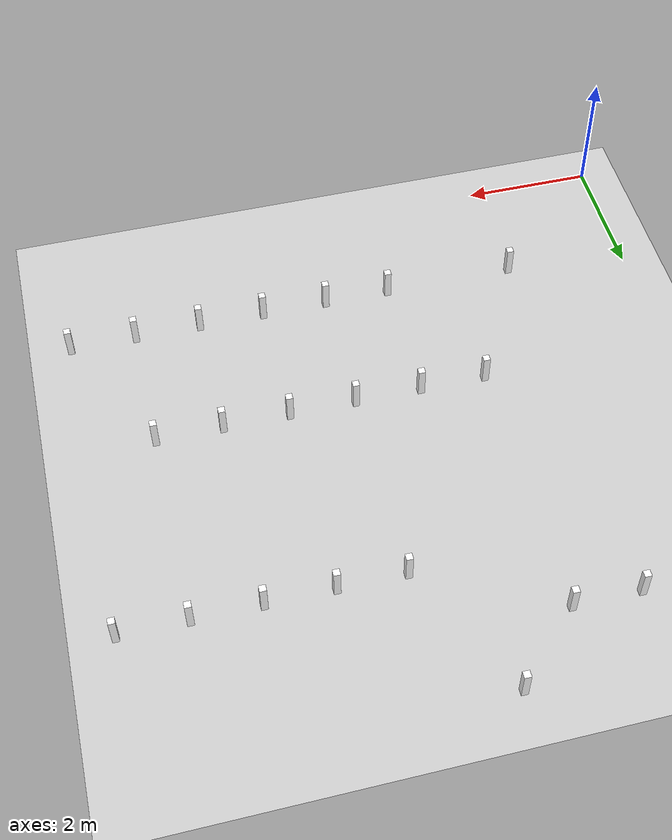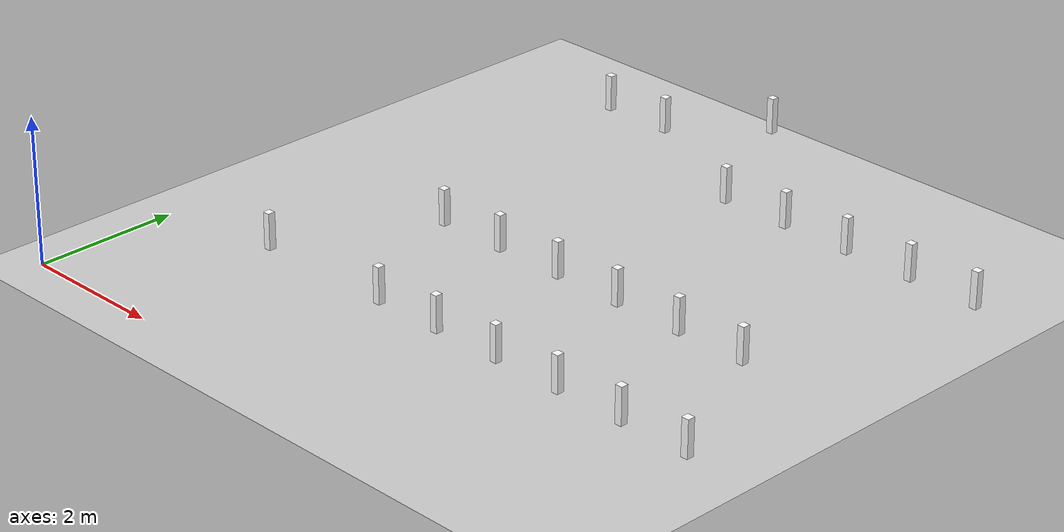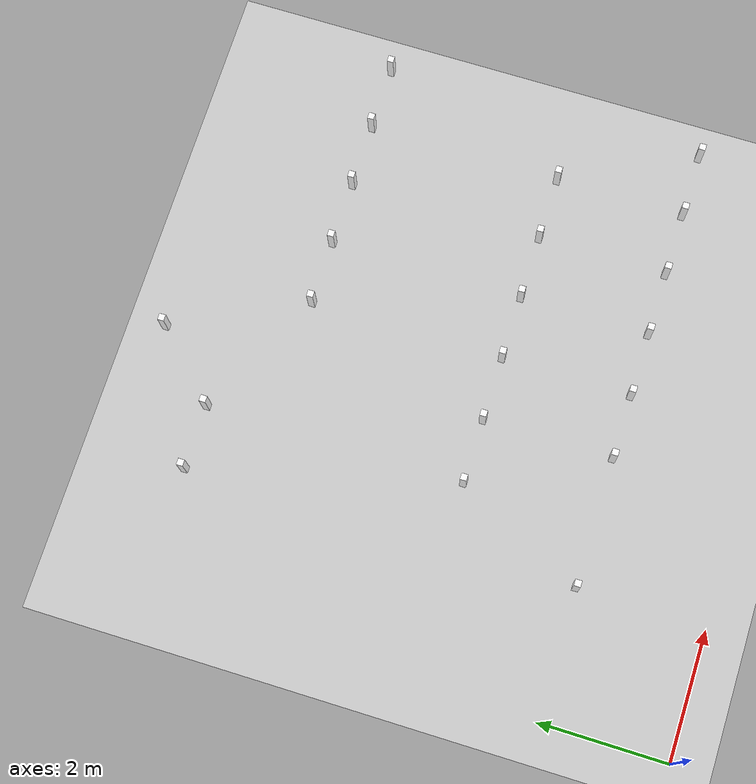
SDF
<sdf version="1.6">
  <world name="default">

    <!-- Ground plane -->
    <include>
      <uri>model://ground_plane</uri>
    </include>

    <!-- Sun -->
    <include>
      <uri>model://sun</uri>
    </include>

    <!-- Thin Wall 1 at (0, 0) -->
    <model name="wall_1">
      <pose>2 2 0.5 0 0 0</pose>
      <link name="link">
        <collision name="collision">
          <geometry>
            <box>
              <!-- Thin wall dimensions -->
              <size>0.1 0.1 0.5</size>
            </box>
          </geometry>
        </collision>
        <visual name="visual">
          <geometry>
            <box>
              <size>0.1 0.1 0.5</size>
            </box>
          </geometry>
          <material>
            <ambient>1 1 1 1</ambient>
            <diffuse>1 1 1 1</diffuse>
          </material>
        </visual>
      </link>
    </model>

    <!-- Add more thin walls as needed -->
     <!-- Thin Wall 4 at (0, 1) -->
    <model name="wall_4">
      <pose>3 4 0.5 0 0 0</pose>
      <link name="link">
        <collision name="collision">
          <geometry>
            <box>
              <!-- Thin wall dimensions -->
              <size>0.1 0.1 0.5</size>
            </box>
          </geometry>
        </collision>
        <visual name="visual">
          <geometry>
            <box>
              <size>0.1 0.1 0.5</size>
            </box>
          </geometry>
          <material>
            <ambient>1 1 1 1</ambient>
            <diffuse>1 1 1 1</diffuse>
          </material>
        </visual>
      </link>
    </model>

  <!-- Add more thin walls as needed -->
     <!-- Thin Wall 5 at (0, 1) -->
    <model name="wall_5">
      <pose>4 4 0.5 0 0 0</pose>
      <link name="link">
        <collision name="collision">
          <geometry>
            <box>
              <!-- Thin wall dimensions -->
              <size>0.1 0.1 0.5</size>
            </box>
          </geometry>
        </collision>
        <visual name="visual">
          <geometry>
            <box>
              <size>0.1 0.1 0.5</size>
            </box>
          </geometry>
          <material>
            <ambient>1 1 1 1</ambient>
            <diffuse>1 1 1 1</diffuse>
          </material>
        </visual>
      </link>
    </model>

    <!-- Add more thin walls as needed -->

    <model name="wall_6">
      <pose>5 4 0.5 0 0 0</pose>
      <link name="link">
        <collision name="collision">
          <geometry>
            <box>
              <!-- Thin wall dimensions -->
              <size>0.1 0.1 0.5</size>
            </box>
          </geometry>
        </collision>
        <visual name="visual">
          <geometry>
            <box>
              <size>0.1 0.1 0.5</size>
            </box>
          </geometry>
          <material>
            <ambient>1 1 1 1</ambient>
            <diffuse>1 1 1 1</diffuse>
          </material>
        </visual>
      </link>
    </model>

    <model name="wall_7">
      <pose>6 4 0.5 0 0 0</pose>
      <link name="link">
        <collision name="collision">
          <geometry>
            <box>
              <!-- Thin wall dimensions -->
              <size>0.1 0.1 0.5</size>
            </box>
          </geometry>
        </collision>
        <visual name="visual">
          <geometry>
            <box>
              <size>0.1 0.1 0.5</size>
            </box>
          </geometry>
          <material>
            <ambient>1 1 1 1</ambient>
            <diffuse>1 1 1 1</diffuse>
          </material>
        </visual>
      </link>
    </model>
    <model name="wall_8">
      <pose>7 4 0.5 0 0 0</pose>
      <link name="link">
        <collision name="collision">
          <geometry>
            <box>
              <!-- Thin wall dimensions -->
              <size>0.1 0.1 0.5</size>
            </box>
          </geometry>
        </collision>
        <visual name="visual">
          <geometry>
            <box>
              <size>0.1 0.1 0.5</size>
            </box>
          </geometry>
          <material>
            <ambient>1 1 1 1</ambient>
            <diffuse>1 1 1 1</diffuse>
          </material>
        </visual>
      </link>
    </model>

    <model name="wall_8">
      <pose>7 4 0.5 0 0 0</pose>
      <link name="link">
        <collision name="collision">
          <geometry>
            <box>
              <!-- Thin wall dimensions -->
              <size>0.1 0.1 0.5</size>
            </box>
          </geometry>
        </collision>
        <visual name="visual">
          <geometry>
            <box>
              <size>0.1 0.1 0.5</size>
            </box>
          </geometry>
          <material>
            <ambient>1 1 1 1</ambient>
            <diffuse>1 1 1 1</diffuse>
          </material>
        </visual>
      </link>
    </model>

    <model name="wall_9">
      <pose>8 4 0.5 0 0 0</pose>
      <link name="link">
        <collision name="collision">
          <geometry>
            <box>
              <!-- Thin wall dimensions -->
              <size>0.1 0.1 0.5</size>
            </box>
          </geometry>
        </collision>
        <visual name="visual">
          <geometry>
            <box>
              <size>0.1 0.1 0.5</size>
            </box>
          </geometry>
          <material>
            <ambient>1 1 1 1</ambient>
            <diffuse>1 1 1 1</diffuse>
          </material>
        </visual>
      </link>
    </model>

    <model name="wall_4_0">
      <pose>4 2 0.5 0 0 0</pose>
      <link name="link">
        <collision name="collision">
          <geometry>
            <box>
              <!-- Thin wall dimensions -->
              <size>0.1 0.1 0.5</size>
            </box>
          </geometry>
        </collision>
        <visual name="visual">
          <geometry>
            <box>
              <size>0.1 0.1 0.5</size>
            </box>
          </geometry>
          <material>
            <ambient>1 1 1 1</ambient>
            <diffuse>1 1 1 1</diffuse>
          </material>
        </visual>
      </link>
    </model>

    <model name="wall_4_1">
      <pose>5 2 0.5 0 0 0</pose>
      <link name="link">
        <collision name="collision">
          <geometry>
            <box>
              <!-- Thin wall dimensions -->
              <size>0.1 0.1 0.5</size>
            </box>
          </geometry>
        </collision>
        <visual name="visual">
          <geometry>
            <box>
              <size>0.1 0.1 0.5</size>
            </box>
          </geometry>
          <material>
            <ambient>1 1 1 1</ambient>
            <diffuse>1 1 1 1</diffuse>
          </material>
        </visual>
      </link>
    </model>

    <model name="wall_4_2">
      <pose>6 2 0.5 0 0 0</pose>
      <link name="link">
        <collision name="collision">
          <geometry>
            <box>
              <!-- Thin wall dimensions -->
              <size>0.1 0.1 0.5</size>
            </box>
          </geometry>
        </collision>
        <visual name="visual">
          <geometry>
            <box>
              <size>0.1 0.1 0.5</size>
            </box>
          </geometry>
          <material>
            <ambient>1 1 1 1</ambient>
            <diffuse>1 1 1 1</diffuse>
          </material>
        </visual>
      </link>
    </model>

    <model name="wall_4_3">
      <pose>7 2 0.5 0 0 0</pose>
      <link name="link">
        <collision name="collision">
          <geometry>
            <box>
              <!-- Thin wall dimensions -->
              <size>0.1 0.1 0.5</size>
            </box>
          </geometry>
        </collision>
        <visual name="visual">
          <geometry>
            <box>
              <size>0.1 0.1 0.5</size>
            </box>
          </geometry>
          <material>
            <ambient>1 1 1 1</ambient>
            <diffuse>1 1 1 1</diffuse>
          </material>
        </visual>
      </link>
    </model>

    <model name="wall_4_4">
      <pose>8 2 0.5 0 0 0</pose>
      <link name="link">
        <collision name="collision">
          <geometry>
            <box>
              <!-- Thin wall dimensions -->
              <size>0.1 0.1 0.5</size>
            </box>
          </geometry>
        </collision>
        <visual name="visual">
          <geometry>
            <box>
              <size>0.1 0.1 0.5</size>
            </box>
          </geometry>
          <material>
            <ambient>1 1 1 1</ambient>
            <diffuse>1 1 1 1</diffuse>
          </material>
        </visual>
      </link>
    </model>

    <model name="wall_4_5">
      <pose>9 2 0.5 0 0 0</pose>
      <link name="link">
        <collision name="collision">
          <geometry>
            <box>
              <!-- Thin wall dimensions -->
              <size>0.1 0.1 0.5</size>
            </box>
          </geometry>
        </collision>
        <visual name="visual">
          <geometry>
            <box>
              <size>0.1 0.1 0.5</size>
            </box>
          </geometry>
          <material>
            <ambient>1 1 1 1</ambient>
            <diffuse>1 1 1 1</diffuse>
          </material>
        </visual>
      </link>
    </model>

    <model name="wall_7_1">
      <pose>5 7 0.5 0 0 0</pose>
      <link name="link">
        <collision name="collision">
          <geometry>
            <box>
              <!-- Thin wall dimensions -->
              <size>0.1 0.1 0.5</size>
            </box>
          </geometry>
        </collision>
        <visual name="visual">
          <geometry>
            <box>
              <size>0.1 0.1 0.5</size>
            </box>
          </geometry>
          <material>
            <ambient>1 1 1 1</ambient>
            <diffuse>1 1 1 1</diffuse>
          </material>
        </visual>
      </link>
    </model>

    <model name="wall_7_2">
      <pose>6 7 0.5 0 0 0</pose>
      <link name="link">
        <collision name="collision">
          <geometry>
            <box>
              <!-- Thin wall dimensions -->
              <size>0.1 0.1 0.5</size>
            </box>
          </geometry>
        </collision>
        <visual name="visual">
          <geometry>
            <box>
              <size>0.1 0.1 0.5</size>
            </box>
          </geometry>
          <material>
            <ambient>1 1 1 1</ambient>
            <diffuse>1 1 1 1</diffuse>
          </material>
        </visual>
      </link>
    </model>

    <model name="wall_7_3">
      <pose>7 7 0.5 0 0 0</pose>
      <link name="link">
        <collision name="collision">
          <geometry>
            <box>
              <!-- Thin wall dimensions -->
              <size>0.1 0.1 0.5</size>
            </box>
          </geometry>
        </collision>
        <visual name="visual">
          <geometry>
            <box>
              <size>0.1 0.1 0.5</size>
            </box>
          </geometry>
          <material>
            <ambient>1 1 1 1</ambient>
            <diffuse>1 1 1 1</diffuse>
          </material>
        </visual>
      </link>
    </model>

    <model name="wall_7_4">
      <pose>8 7 0.5 0 0 0</pose>
      <link name="link">
        <collision name="collision">
          <geometry>
            <box>
              <!-- Thin wall dimensions -->
              <size>0.1 0.1 0.5</size>
            </box>
          </geometry>
        </collision>
        <visual name="visual">
          <geometry>
            <box>
              <size>0.1 0.1 0.5</size>
            </box>
          </geometry>
          <material>
            <ambient>1 1 1 1</ambient>
            <diffuse>1 1 1 1</diffuse>
          </material>
        </visual>
      </link>
    </model>

    <model name="wall_7_5">
      <pose>9 7 0.5 0 0 0</pose>
      <link name="link">
        <collision name="collision">
          <geometry>
            <box>
              <!-- Thin wall dimensions -->
              <size>0.1 0.1 0.5</size>
            </box>
          </geometry>
        </collision>
        <visual name="visual">
          <geometry>
            <box>
              <size>0.1 0.1 0.5</size>
            </box>
          </geometry>
          <material>
            <ambient>1 1 1 1</ambient>
            <diffuse>1 1 1 1</diffuse>
          </material>
        </visual>
      </link>
    </model>

    <model name="wall_8_0">
      <pose>2 8 0.5 0 0 0</pose>
      <link name="link">
        <collision name="collision">
          <geometry>
            <box>
              <!-- Thin wall dimensions -->
              <size>0.1 0.1 0.5</size>
            </box>
          </geometry>
        </collision>
        <visual name="visual">
          <geometry>
            <box>
              <size>0.1 0.1 0.5</size>
            </box>
          </geometry>
          <material>
            <ambient>1 1 1 1</ambient>
            <diffuse>1 1 1 1</diffuse>
          </material>
        </visual>
      </link>
    </model>

    <model name="wall_8_1">
      <pose>3 8 0.5 0 0 0</pose>
      <link name="link">
        <collision name="collision">
          <geometry>
            <box>
              <!-- Thin wall dimensions -->
              <size>0.1 0.1 0.5</size>
            </box>
          </geometry>
        </collision>
        <visual name="visual">
          <geometry>
            <box>
              <size>0.1 0.1 0.5</size>
            </box>
          </geometry>
          <material>
            <ambient>1 1 1 1</ambient>
            <diffuse>1 1 1 1</diffuse>
          </material>
        </visual>
      </link>
    </model>

     <model name="wall_9_0">
      <pose>4 9 0.5 0 0 0</pose>
      <link name="link">
        <collision name="collision">
          <geometry>
            <box>
              <!-- Thin wall dimensions -->
              <size>0.1 0.1 0.5</size>
            </box>
          </geometry>
        </collision>
        <visual name="visual">
          <geometry>
            <box>
              <size>0.1 0.1 0.5</size>
            </box>
          </geometry>
          <material>
            <ambient>1 1 1 1</ambient>
            <diffuse>1 1 1 1</diffuse>
          </material>
        </visual>
      </link>
    </model>
  </world>
</sdf>
